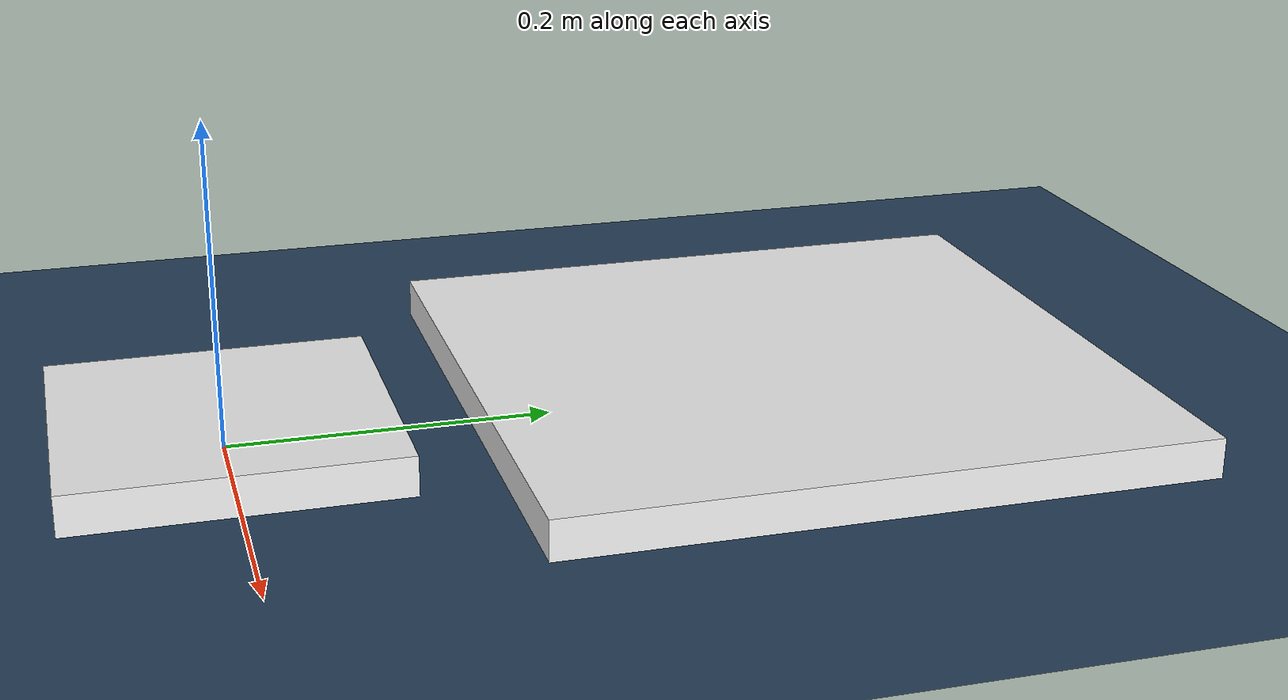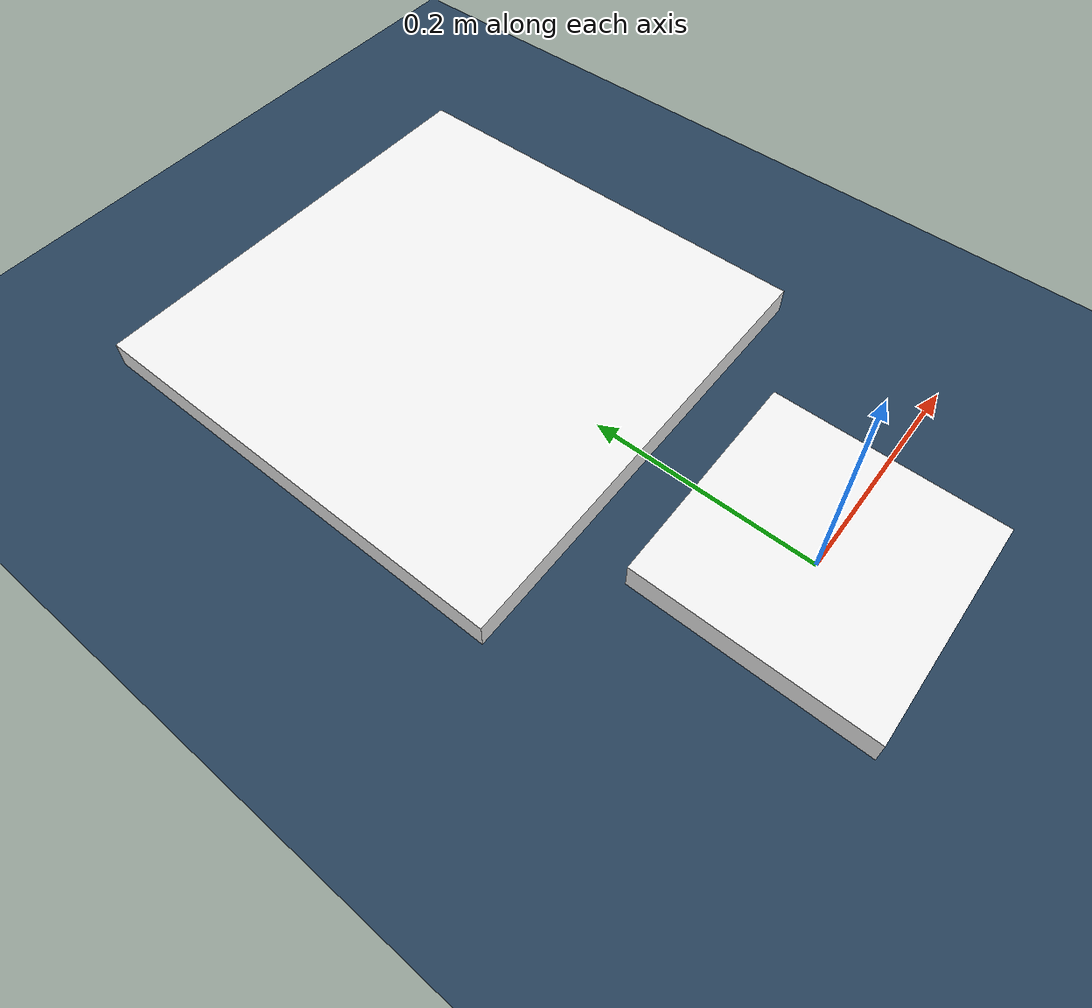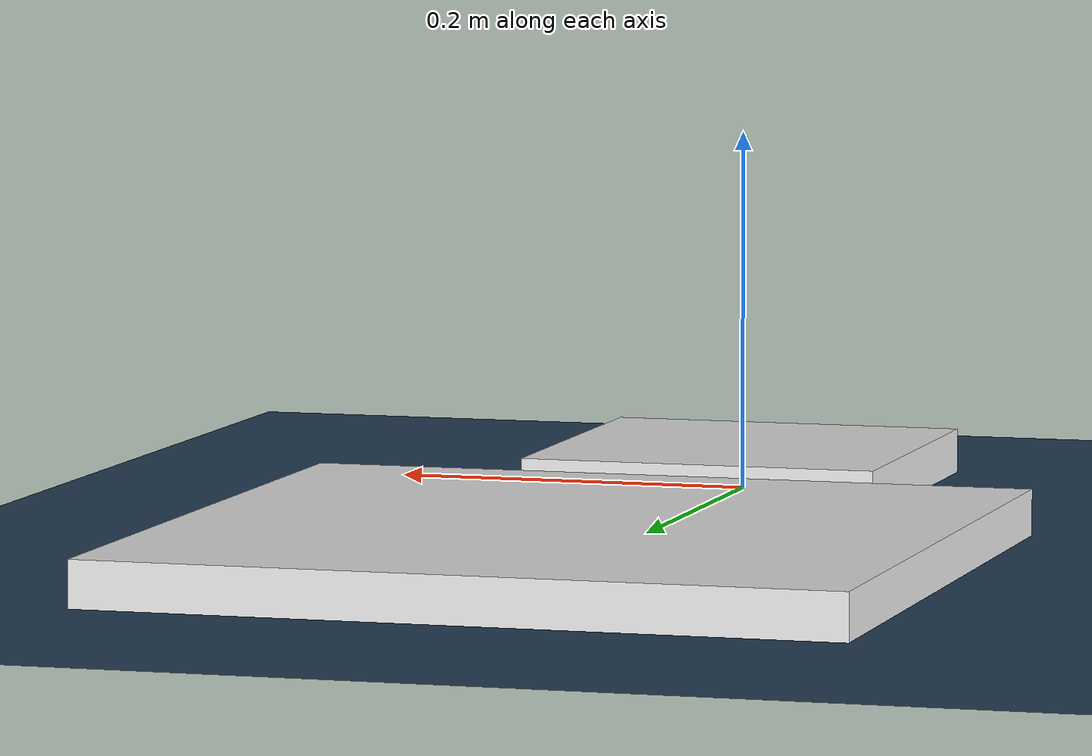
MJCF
<mujoco model="arena">
  <compiler angle="radian" meshdir="assets/" autolimits="true"/>

  <visual>
    <headlight diffuse="0.6 0.6 0.6" ambient="0.1 0.1 0.1" specular="0 0 0"/>
    <rgba haze="0.15 0.25 0.35 1"/>
    <global azimuth="120" elevation="-20"/>
  </visual>

  <default>
    <camera pos="0.72 0.9 0.7" xyaxes="-0.7 0.7 0.0 -0.25 -0.25 0.90"/>
  </default>

  <asset>
    <texture type="skybox" builtin="gradient" rgb1="0.3 0.5 0.7" rgb2="0 0 0" width="512" height="3072"/>
    <texture type="2d" name="groundplane" builtin="checker" mark="edge" rgb1="0.2 0.3 0.4" rgb2="0.1 0.2 0.3"
      markrgb="0.8 0.8 0.8" width="300" height="300"/>
    <material name="groundplane" texture="groundplane" texuniform="true" texrepeat="5 5" reflectance="0.2"/>

    <material name="table_mat" specular="0" shininess="0.5" reflectance="0" rgba="0.93 0.93 0.93 1"/>
    <material name="block_mat" specular="0" shininess="0.5" reflectance="0" rgba="0.2 0.2 0.2 1"/>

    <material name="white" rgba="1 1 1 1"/>

  </asset>

  <worldbody>
    <light pos="0 0 1.5" dir="0 0 -1" directional="true"/>
    <geom name="floor" size="0 0 0.05" type="plane" material="groundplane"/>

    <camera name="diagonal_front" pos="0.72 0.9 0.7" xyaxes="-0.7 0.7 0.0 -0.25 -0.25 0.90"/>
    <camera name="fixednear" pos="0 1 1" zaxis="0 1 -1"></camera>
    <camera name="fixedfar" pos="0 -2 2" zaxis="0 -1 1"></camera>
    <camera name="top" pos="0 0 2" zaxis="0 0 1"/>
    <camera name="topnear" pos="0.2 -0.14 1.65" zaxis="0 0 1"/>
    <camera name="sidefront" pos="0 -1.8 0.35" xyaxes="1 0 0 0 0 1"/>
    <camera name="sideright" pos="1.17 0 0.3" xyaxes="0 1 0 0 0 1"/>
    <camera name="tableclose" pos="0.72 0.41 0.36" xyaxes="-0.7 0.7 0.0 -0.25 -0.25 0.90"/>

    <body name="table_stand" pos="0 0 0.025">
      <geom name="table_stand" pos="0 0 -0.0125" material="table_mat" size="0.1 0.1 0.0125" type="box"/>
      <frame name="robot_base"/>
    </body>

    <body name="table_desk" pos="0 0.35 0.025">
      <geom name="table_desk" size="0.2 0.2 0.0125" pos="0 0 -0.0125" type="box" material="table_mat" contype="1" conaffinity="1" solref="0.0001 1" solimp="1 1 0.001" margin="0.0005" />
    </body>

  </worldbody>

</mujoco>
